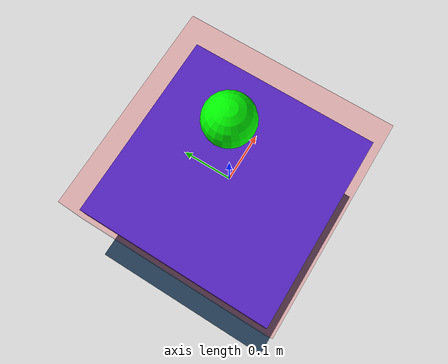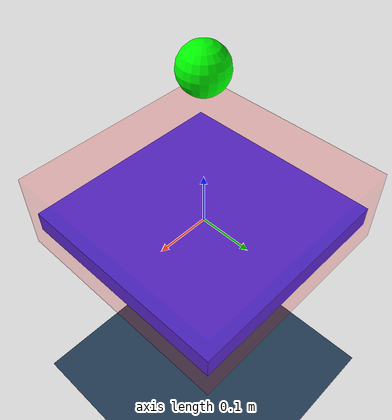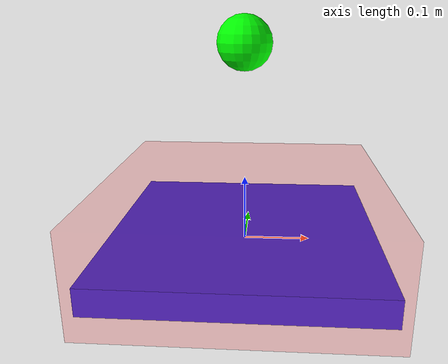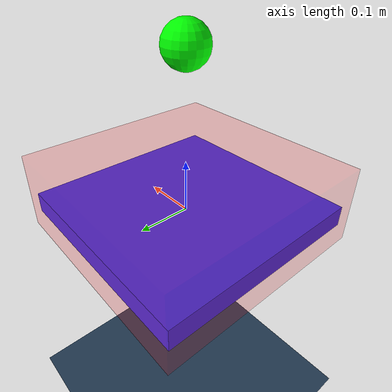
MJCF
<mujoco model="ball_bounce">
  <compiler angle="radian" />
  <option timestep=".002" />
  <asset>
    <texture name="grid" type="2d" builtin="checker" rgb1=".1 .2 .3"
      rgb2=".2 .3 .4" width="300" height="300" mark="none" />
    <material name="grid" texture="grid" texrepeat="1 1"
      texuniform="true" reflectance=".2" />
  </asset>
  <worldbody>
    <light name="light" pos="0 0 1" />
    <geom name="floor" type="plane" pos="0 0 -0.5" size="2 2 .1" material="grid" />
    <body name="paddle_body" pos="0 0 0">
      <site name="bounce_sensor" pos="0 0 0.025" size="0.21 0.21 0.075" type="box" rgba="1 0 0 .15" />
      <joint name="rotate_x" pos="0 0 0" axis="1 0 0" range="-.3 .3" damping="10" />
      <joint name="rotate_y" pos="0 0 0" axis="0 1 0" range="-.3 .3" damping="10" />
      <joint name="rotate_z" pos="0 0 0" axis="0 0 1" range="-.3 .3" damping="10" />
      <joint axis="0 0 1" limited="true" name="slider_z" range="0 0.5" type="slide" />
      <joint axis="0 1 0" limited="true" name="slider_y" range="-.2 .2" type="slide" />
      <joint axis="1 0 0" limited="true" name="slider_x" range="-.2 .2" type="slide" />
      <geom name="paddle_geom" type="box" size=".2 .2 .02" rgba="0.2 0.2 1 1" solref="0.02 0.07" />
    </body>
    <body name="ball_body" pos="0 0 0.3">
      <freejoint name="ball_freejoint" />
      <site name="ball_site" pos="0 0 0" size="0.04" rgba="0 1 0 1" />
      <geom name="ball_geom" type="sphere" size=".04" rgba="0 1 0 1" solref="0.02 0.07" />
    </body>
  </worldbody>
  <actuator>
    <general name="act_x" joint="rotate_x" ctrlrange="-1 1" gainprm="500 0 0" />
    <general name="act_y" joint="rotate_y" ctrlrange="-1 1" gainprm="500 0 0" />
    <general name="act_z" joint="rotate_z" ctrlrange="-1 1" gainprm="500 0 0" />
    <motor ctrllimited="true" ctrlrange="-1 1" gear="100" joint="slider_z" name="slider_z_motor" />
    <motor ctrllimited="true" ctrlrange="-1 1" gear="50" joint="slider_y" name="slider_y_motor" />
    <motor ctrllimited="true" ctrlrange="-1 1" gear="50" joint="slider_x" name="slider_x_motor" />
  </actuator>
  <sensor>
    <fromto name="ball_to_paddle" body1="ball_body" body2="paddle_body" />
    <accelerometer site="ball_site" name="ball_accelerometer" />
    <velocimeter site="ball_site" name="ball_velocity" />
    <touch name="touch_sensor" site="bounce_sensor" />
  </sensor>
</mujoco>
